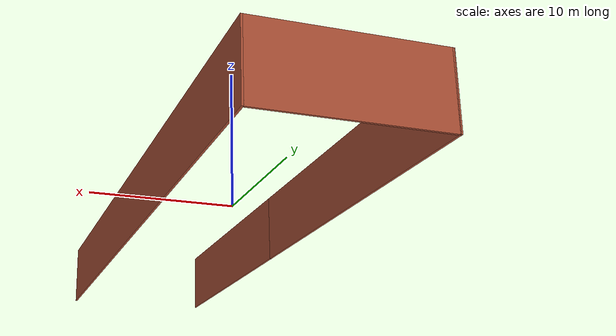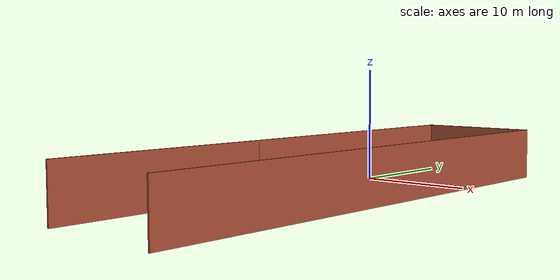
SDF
<?xml version='1.0'?>
<sdf version='1.6'>
  <model name='sjtu_house'>
    <pose frame=''>-0.069943 -5.27686 0 0 -0 0</pose>
    <link name='Wall_0'>
      <collision name='Wall_0_Collision'>
        <geometry>
          <box>
            <size>27.25 0.15 5</size>
          </box>
        </geometry>
        <pose frame=''>0 0 1.25 0 -0 0</pose>
      </collision>
      <visual name='Wall_0_Visual'>
        <pose frame=''>0 0 1.25 0 -0 0</pose>
        <geometry>
          <box>
            <size>27.25 0.15 5</size>
          </box>
        </geometry>
        <material>
          <script>
            <uri>file://media/materials/scripts/gazebo.material</uri>
            <name>Gazebo/Bricks</name>
          </script>
          <ambient>0.921569 0.807843 0.615686 1</ambient>
        </material>
        <meta>
          <layer>0</layer>
        </meta>
      </visual>
      <pose frame=''>-5.9931 10.5 0 0 -0 1.5708</pose>
    </link>
    <link name='Wall_2'>
      <collision name='Wall_2_Collision'>
        <geometry>
          <box>
            <size>12.0125 0.15 5</size>
          </box>
        </geometry>
        <pose frame=''>0 0 1.25 0 -0 0</pose>
      </collision>
      <visual name='Wall_2_Visual'>
        <pose frame=''>0 0 1.25 0 -0 0</pose>
        <geometry>
          <box>
            <size>12.0125 0.15 5</size>
          </box>
        </geometry>
        <material>
          <script>
            <uri>file://media/materials/scripts/gazebo.material</uri>
            <name>Gazebo/Bricks</name>
          </script>
          <ambient>0.921569 0.807843 0.615686 1</ambient>
        </material>
        <meta>
          <layer>0</layer>
        </meta>
      </visual>
      <pose frame=''>-0.061878 24.05 0 0 -0 0</pose>
    </link>
    <link name='Wall_3'>
      <collision name='Wall_3_Collision'>
        <geometry>
          <box>
            <size>48.25 0.15 5</size>
          </box>
        </geometry>
        <pose frame=''>0 0 1.25 0 -0 0</pose>
      </collision>
      <visual name='Wall_3_Visual'>
        <pose frame=''>0 0 1.25 0 -0 0</pose>
        <geometry>
          <box>
            <size>48.25 0.15 5</size>
          </box>
        </geometry>
        <material>
          <script>
            <uri>file://media/materials/scripts/gazebo.material</uri>
            <name>Gazebo/Bricks</name>
          </script>
          <ambient>0.921569 0.807843 0.615686 1</ambient>
        </material>
        <meta>
          <layer>0</layer>
        </meta>
      </visual>
      <pose frame=''>5.9931 -1e-06 0 0 0 -1.5708</pose>
    </link>
    <link name='Wall_5'>
      <collision name='Wall_5_Collision'>
        <geometry>
          <box>
            <size>21 0.15 5</size>
          </box>
        </geometry>
        <pose frame=''>0 0 1.25 0 -0 0</pose>
      </collision>
      <visual name='Wall_5_Visual'>
        <pose frame=''>0 0 1.25 0 -0 0</pose>
        <geometry>
          <box>
            <size>21 0.15 5</size>
          </box>
        </geometry>
        <material>
          <script>
            <uri>file://media/materials/scripts/gazebo.material</uri>
            <name>Gazebo/Bricks</name>
          </script>
          <ambient>0.921569 0.807843 0.615686 1</ambient>
        </material>
        <meta>
          <layer>0</layer>
        </meta>
      </visual>
      <pose frame=''>-5.9931 -13.475 0 0 0 -1.5708</pose>
    </link>
    <static>1</static>
  </model>
</sdf>
